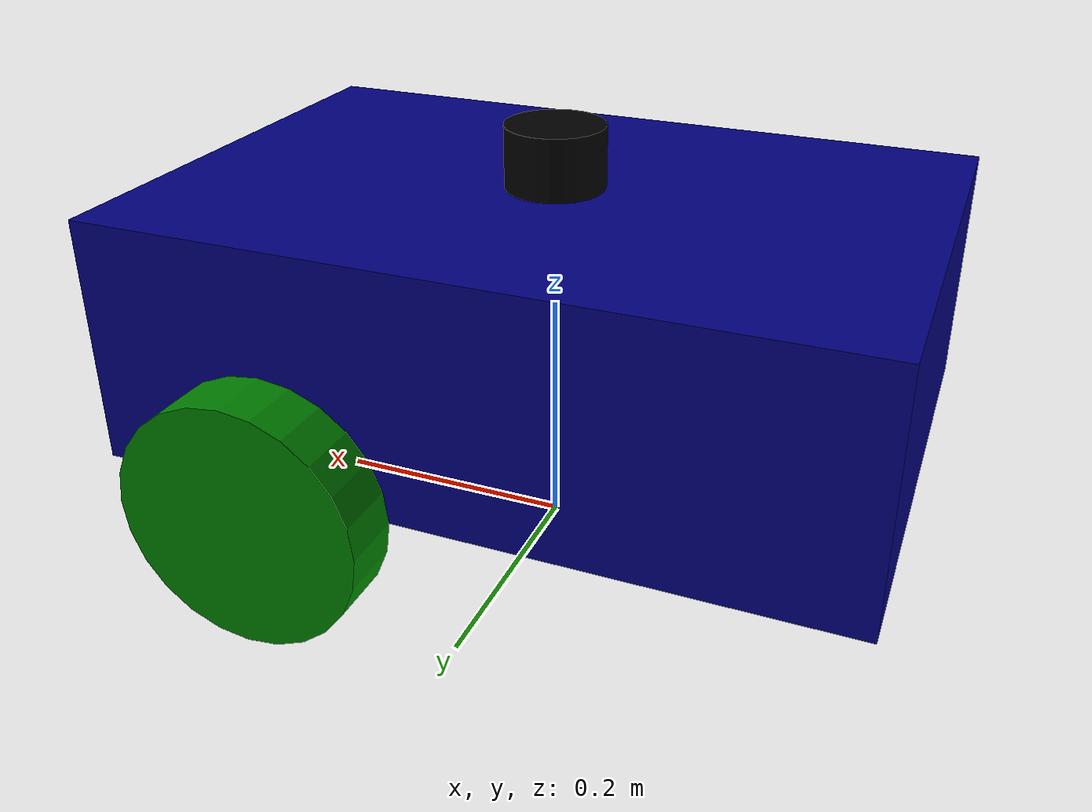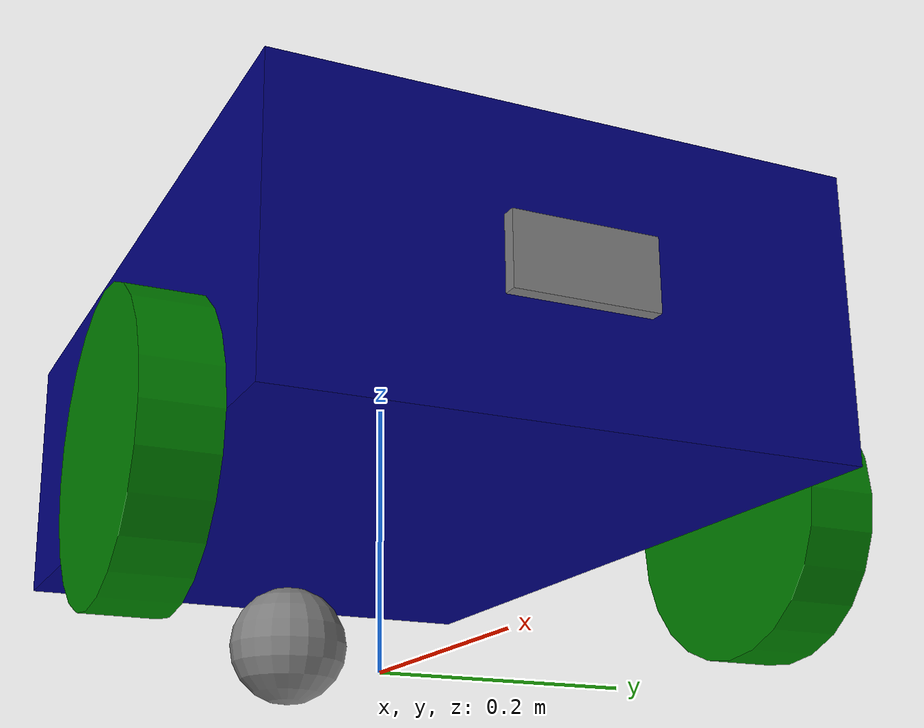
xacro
<?xml version="1.0"?>

<robot name="my_robot" xmlns:xacro="http://www.ros.org/wiki/xacro">

    <xacro:include filename="common_properties.xacro" />
    <xacro:include filename="mobile_base.xacro" />
    <xacro:include filename="mobile_base_gazebo.xacro" />
    <xacro:include filename="camera.xacro" />
    <xacro:include filename="lidar.xacro" />

    <joint name="lidar_base_joint" type="fixed">
        <parent link="base_link"/>
        <child link="laser_frame"/>
        <origin xyz="0 0 ${base_height+lidar_length/2}" rpy="0 0 0" />
    </joint>

</robot>

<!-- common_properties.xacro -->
<robot name="my_robot" xmlns:xacro="http://www.ros.org/wiki/xacro">

    <material name="green">
        <color rgba="0 0.5 0 1" />
    </material>

    <material name="black">
        <color rgba="0 0 0 1" />
    </material>

    <material name="blue">
        <color rgba="0 0 0.5 1" />
    </material>

    <material name="grey">
        <color rgba="0.5 0.5 0.5 1" />
    </material>

    <material name="yellow">
        <color rgba="1 1 0 1"/>
    </material>

    <material name="orange">
        <color rgba="1 0.647 0 1" />
    </material>

    <!-- inertial tag for box -->

    <xacro:macro name="box_inertia" params="m l w h xyz rpy" >
        <inertial>
            <origin xyz="${xyz}" rpy="${rpy}" />
            <mass value="${m}" />
            <inertia ixx="${(m/12)*(h*h + l*l)}" ixy="0" ixz="0"
                     iyy="${(m/12)*(l*l + w*w)}" iyz="0"
                     izz="${(m/12)*(w*w + h*h)}" />
        </inertial>
    </xacro:macro>

    <!-- inertial tag for cylinder -->

    <xacro:macro name="cylinder_inertia" params="m r h xyz rpy">
        <inertial>
            <origin xyz="${xyz}" rpy="${rpy}" />
            <mass value="${m}" />
            <inertia ixx="${(m/12)*(3*r*r + h*h)}" ixy="0" ixz="0"
                     iyy="${(m/12)*(3*r*r + h*h)}" iyz="0"
                     izz="${(m/2)*(r*r)}" />
        </inertial>
    </xacro:macro>

    <!-- inertial tag for sphere -->

    <xacro:macro name="sphere_inertia" params="m r xyz rpy" >
        <inertial>
            <origin xyz="${xyz}" rpy="${rpy}" />
            <mass value="${m}" />
            <inertia ixx="${(2/5)*m*r*r}" ixy="0" ixz="0"
                     iyy="${(2/5)*m*r*r}" iyz="0"
                     izz="${(2/5)*m*r*r}" />
        </inertial>
    </xacro:macro>

</robot>

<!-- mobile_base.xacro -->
<robot name="my_robot" xmlns:xacro="http://www.ros.org/wiki/xacro">

    <!-- setting up variables -->
    <xacro:property name="base_length" value="0.6" />
    <xacro:property name="base_width" value="0.4" />
    <xacro:property name="base_height" value="0.2" />
    <xacro:property name="wheel_radius" value="0.1" />
    <xacro:property name="wheel_length" value="0.05" />

    <link name="base_footprint" />
    <!-- description of base link -->
    <link name="base_link">
        <visual>
            <geometry>
                <box size="${base_length} ${base_width} ${base_height}" />
            </geometry>
            <origin xyz="0 0 0.1" rpy="0 0 0" />
            <material name="blue" />
        </visual>
        <collision>
            <geometry>
            <box size="${base_length} ${base_width} ${base_height}" />
            </geometry>
            <origin xyz="0 0 0.1" rpy="0 0 0" />
        </collision>
        <xacro:box_inertia m="5.0" l="${base_length}" w="${base_height}" h="${base_height}"
                           xyz="0 0 ${base_height/2.0}" rpy="0 0 0" />
    </link>

    <!-- xacro function for wheel -->
    <xacro:macro name="wheel_link" params="prefix" >
    <link name="${prefix}_wheel_link" >
        <visual>
            <geometry>
                <cylinder radius="${wheel_radius}" length="${wheel_length}" />
            </geometry>
            <origin xyz=" 0 0 0" rpy="0 0 0" />
            <material name="green" />
        </visual>
        <collision>
            <geometry>
                <cylinder radius="${wheel_radius}" length="${wheel_length}" />
            </geometry>
            <origin xyz=" 0 0 0" rpy="0 0 0" />
        </collision>
        <xacro:cylinder_inertia m="1" r="${wheel_radius}" h="${wheel_length}"
                             xyz="0 0 0" rpy="0 0 0" />
    </link>
    </xacro:macro>

    <xacro:wheel_link prefix="right" />
    <xacro:wheel_link prefix="left" />

    <!-- description for castor wheel -->
    <link name="caster_wheel_joint" >
        <visual>
            <geometry>
                <sphere radius="${wheel_radius/2}" />
            </geometry>
            <origin xyz="0 0 0" rpy="0 0 0" />
            <material name="grey" />
        </visual>
        <collision>
            <geometry>
                <sphere radius="${wheel_radius/2}" />
            </geometry>
            <origin xyz="0 0 0" rpy="0 0 0" />
        </collision>
        <xacro:sphere_inertia m="0.1" r="${wheel_radius/2}"
                              xyz="0 0 0" rpy="0 0 0" />
    </link>

    <!-- description for joints -->

    <joint name="base_joint" type="fixed">
        <parent link="base_footprint" />
        <child link="base_link" />
        <origin xyz="0 0 ${wheel_radius}" rpy="0 0 0 " />
    </joint>

    <joint name="base_right_wheel_joint" type="continuous" >
        <parent link="base_link" />
        <child link="right_wheel_link" />
        <origin xyz="${base_length/4} ${base_height+wheel_length/2} 0" rpy="${pi / 2.0} 0 0" />
        <axis xyz="0 0 1" />
    </joint>

    <joint name="base_left_wheel_joint" type="continuous" >
        <parent link="base_link" />
        <child link="left_wheel_link" />
        <origin xyz="${base_length/4} -0.225 0" rpy="${pi / 2.0} 0 0" />
        <axis xyz="0 0 1" />
    </joint>

    <joint name="base_cadter_joint" type="fixed" >
        <parent link="base_link" />
        <child link="caster_wheel_joint" />
        <origin xyz="${-base_length/3} 0 ${-wheel_length}" rpy="0 0 0" />
    </joint>

</robot>

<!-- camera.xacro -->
<robot name="my_robot" xmlns:xacro="http://www.ros.org/wiki/xacro">

    <xacro:property name="camera_length" value="0.01" />
    <xacro:property name="camera_width" value="0.1" />
    <xacro:property name="camera_height" value="0.05" />

    <link name="camera_link">
        <visual>
            <geometry>
                <box size="${camera_length} ${camera_width} ${camera_height}" />
            </geometry>
            <material name="grey" />
        </visual>
            <collision>
                <geometry>
                    <box size="${camera_length} ${camera_width} ${camera_height}" />
                </geometry>
            </collision>
            <xacro:box_inertia m="0.1" l="${camera_length}" w="${camera_width}"
                                h="${camera_height}" xyz="0 0 0" rpy="0 0 0" />
    </link>

    <!-- for openCV integration, as the origin and frame of reference of gazebo and openCV is different -->
    <link name="camera_link_optical">
    </link>

    <joint name="camera_optical_joint" type="fixed">
        <origin xyz="0 0 0" rpy="${-pi/2} 0 ${-pi/2}"/>
        <parent link="camera_link"/>
        <child link="camera_link_optical"/>
    </joint>

    <!-- other necessary joints -->

    <joint name="base_camera_joint" type="fixed" >
        <parent link="base_link" />
        <child link="camera_link" />
        <origin xyz="${(base_length+camera_length)/2} 0 ${base_height/2}" rpy="0 0 0" />
    </joint>

    <gazebo reference="camera_link">
        <material>Gazebo/Gray</material>
        <sensor name="camera_sensor" type="camera">
            <pose>0 0 0 0 0 0</pose>
            <visualize>true</visualize>
            <update_rate>10.0</update_rate>
            <plugin name="camera_controller" filename="libgazebo_ros_camera.so">
                <frame_name>camera_link</frame_name>
            </plugin>
        </sensor>
    </gazebo>

</robot>

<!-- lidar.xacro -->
<robot name="my_robot" xmlns:xacro="http://www.ros.org/wiki/xacro">

    <!-- setting up variables -->
    <xacro:property name="lidar_radius" value="0.04"/>
    <xacro:property name="lidar_length" value="0.05"/>

    <link name="laser_frame">
        <visual>
            <geometry>
                <cylinder radius="${lidar_radius}" length="${lidar_length}"/>
            </geometry>
            <origin xyz="0 0 0" rpy="0 0 0" />
            <material name="black"/>
        </visual>
        <collision>
            <geometry>
                <cylinder radius="${lidar_radius}" length="${lidar_length}"/>
            </geometry>
            <origin xyz="0 0 0" rpy="0 0 0" />
        </collision>
        <xacro:cylinder_inertia m="0.1" r="${lidar_radius}" h="${lidar_length}"
                                xyz="0 0 0" rpy="0 0 0"/>
    </link>

    <gazebo reference="laser_frame">
        <material>Gazebo/Black</material>

        <sensor name="laser" type="ray">
            <pose> 0 0 0 0 0 0 </pose>
            <visualize>true</visualize>
            <update_rate>10</update_rate>
            <ray>
                <scan>
                    <horizontal>
                        <samples>360</samples>
                        <min_angle>-3.14</min_angle>
                        <max_angle>3.14</max_angle>
                    </horizontal>
                </scan>
                <range>
                    <min>0.3</min>
                    <max>12</max>
                </range>
            </ray>
            <plugin name="laser_controller" filename="libgazebo_ros_ray_sensor.so">
                <ros>
                    <argument>~/out:=scan</argument>
                </ros>
                <output_type>sensor_msgs/LaserScan</output_type>
                <frame_name>laser_frame</frame_name>
            </plugin>
        </sensor>
    </gazebo>

</robot>
